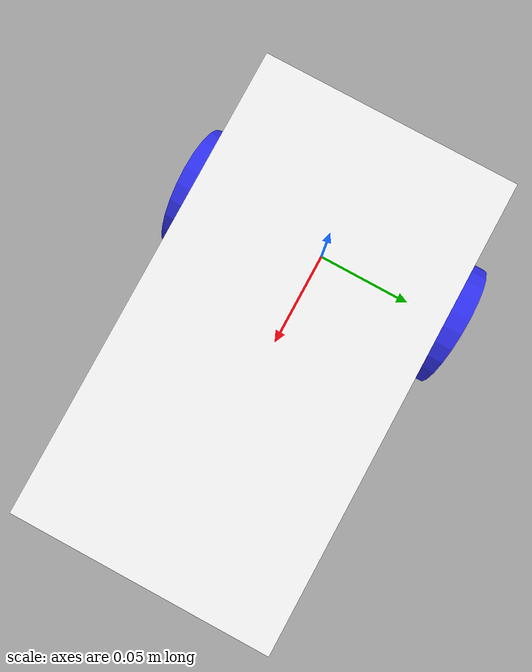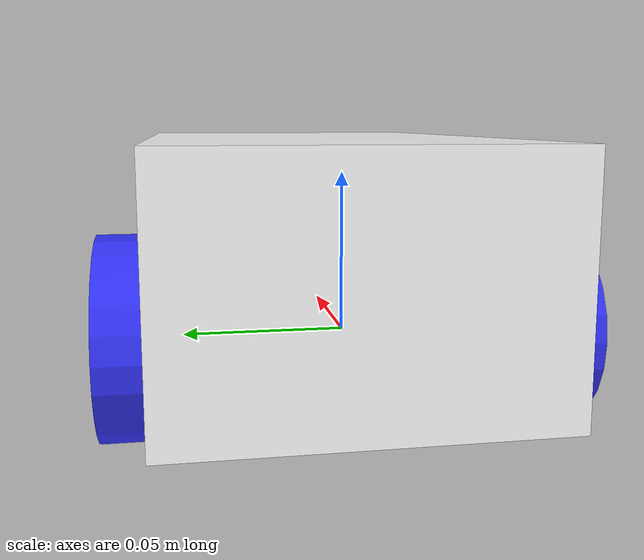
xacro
<?xml version="1.0"?>
<robot xmlns:xacro="http://www.ros.org/wiki/xacro"  name="robot">

    <xacro:include filename="inertial_macros.xacro"/>

    <material name="white">
        <color rgba="1 1 1 1"/>
    </material>
    <material name="orange">
        <color rgba="1 0.3 0.1 1"/>
    </material>
    <material name="blue">
        <color rgba="0.2 0.2 1 1 "/>
    </material>
    <material name="black">
        <color rgba="0 0 0 1"/>
    </material>
<!-- BASE LINK-->
    <link name="base_link">

    </link>

<!-- base footprint -->
    <joint name="base_footprint_joint" type="fixed">
        <parent link="base_link"/>
        <child link="base_footprint"/>
        <origin xyz="0 0 0" rpy="0 0 0"/>
    </joint>

    <link name="base_footprint">
    </link>

<!-- CHASSIS LINK-->

    <joint name="chassis_joint" type="fixed">
        <origin xyz="-0.053 0 0.02"/>
        <parent link="base_link"/>
        <child link="chassis"/>
    </joint>
    <link name="chassis">
        <visual>
            <origin xyz="0.11 0 0"/>
            <geometry>
                <box size="0.22 0.12 0.08"/>
            </geometry>
            <material name="white"/>
        </visual>
        <collision>
            <origin xyz="0.11 0 0"/>
            <geometry>
                <box size="0.22 0.12 0.08"/>
            </geometry>
        </collision>

    </link>

    <gazebo reference="chassis">
        <material>Gazebo/White</material>
    </gazebo>

 <!-- LEFT BACK WHEEL LINK -->
    <joint name="left_back_wheel_joint" type="continuous">
        <parent link="base_link"/>
        <child link="left_back_wheel"/>
        <origin xyz="0 0.06 0" rpy="-${pi/2} 0 0"/>
        <axis xyz="0 0 1"/>
    </joint>

    <link name="left_back_wheel">
        <visual>
            <geometry>
                <cylinder radius="0.032" length="0.03"/>
            </geometry>
            <material name="blue"/>
        </visual>
        <collision>
            <geometry>
                <cylinder  radius="0.032" length="0.03"/>
            </geometry>
        </collision>

    </link>
    <gazebo reference="left_back_wheel">

        <material>Gazebo/Blue</material>
    </gazebo>

     <!-- RIGHT BACK WHEEL LINK -->
    <joint name="right_back_wheel_joint" type="continuous">
        <parent link="base_link"/>
        <child link="right_back_wheel"/>
        <origin xyz="0 -0.06 0" rpy="${pi/2} 0 0"/>
        <axis xyz="0 0 -1"/>
    </joint>

    <link name="right_back_wheel">
        <visual>
            <geometry>
                <cylinder radius="0.032" length="0.03"/>
            </geometry>
            <material name="blue"/>
        </visual>
        <collision>
            <geometry>
                <cylinder  radius="0.032 " length="0.03"/>
            </geometry>

        </collision>

    </link>
    <gazebo reference="right_back_wheel">

        <material>Gazebo/Blue</material>
    </gazebo>

    <!-- cast wheel -->
    <joint name="cast_wheel_joint" type="fixed">
        <parent link="chassis"/>
        <child link="cast_wheel"/>
        <origin xyz="0.18 0 -0.02"/>

    </joint>
    <link name="cast_wheel">
        <visual>
            <geometry>
                <sphere radius="0.032"></sphere>
            </geometry>
            <material name="black"/>
        </visual>
        <collision>
            <geometry>
                <sphere  radius="0.032"/>
            </geometry>
            <material name="black"/>
        </collision>
        <xacro:inertial_sphere mass="0.1" radius="0.032">
            <origin xyz="0 0. 0" rpy="0 0 0"/>
        </xacro:inertial_sphere>
    </link>
    <gazebo reference="cast_wheel">
        <material>Gazebo/Black</material>
    </gazebo>

</robot>
